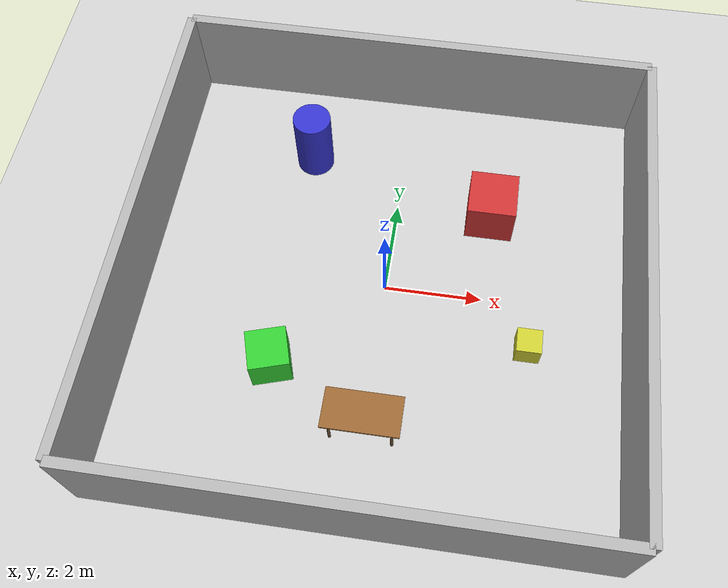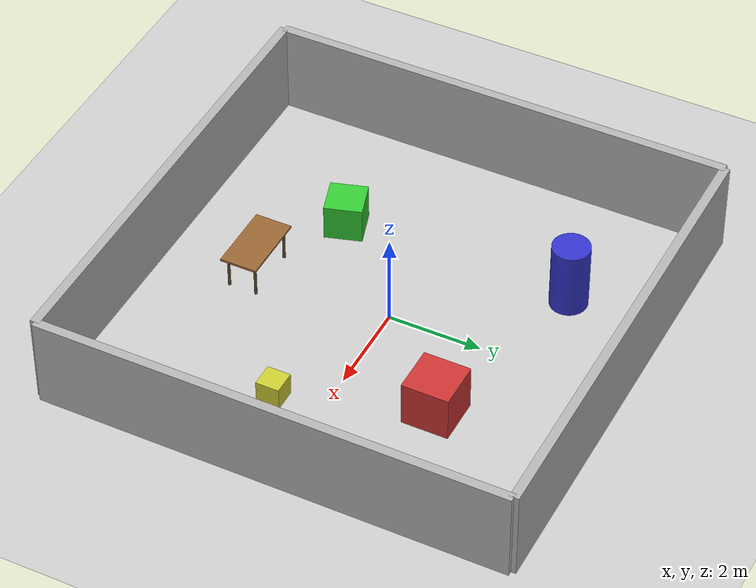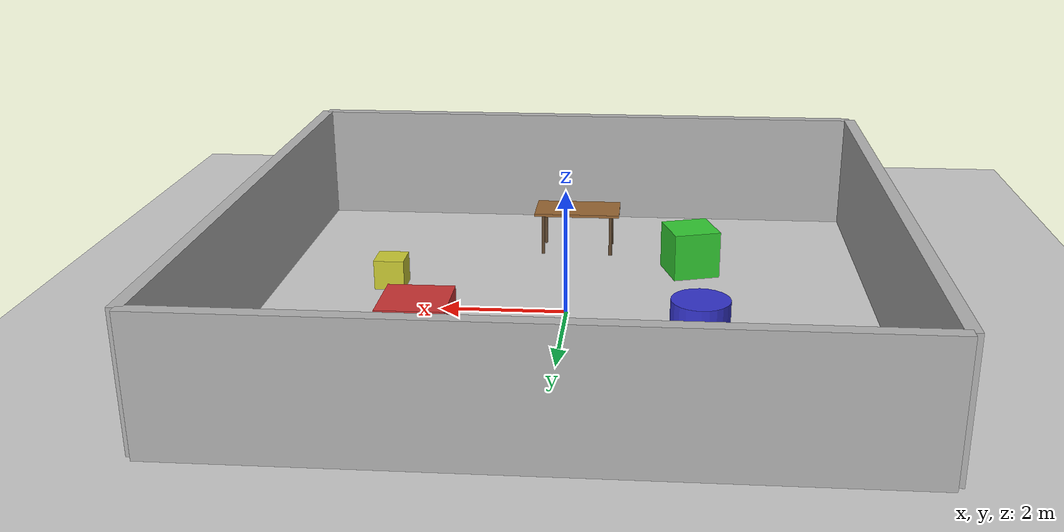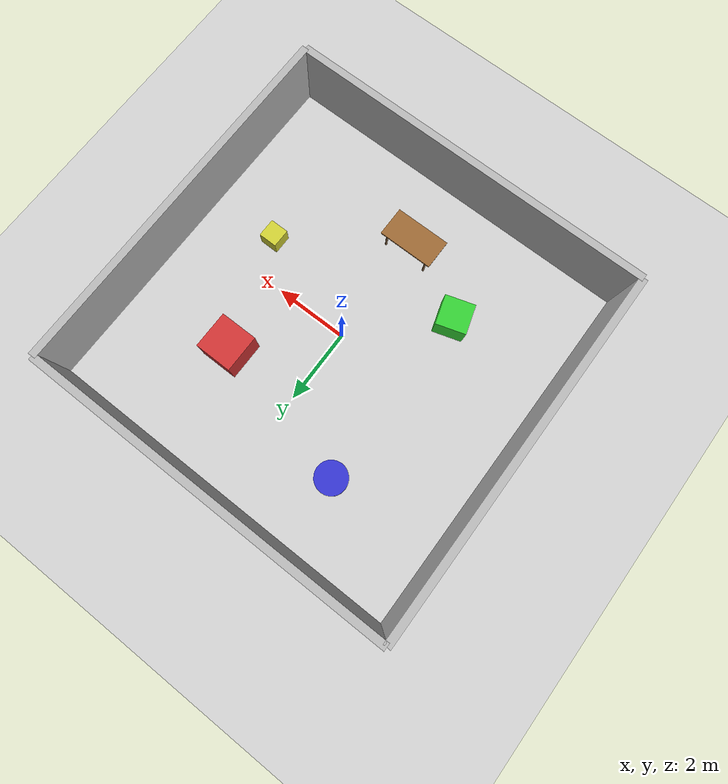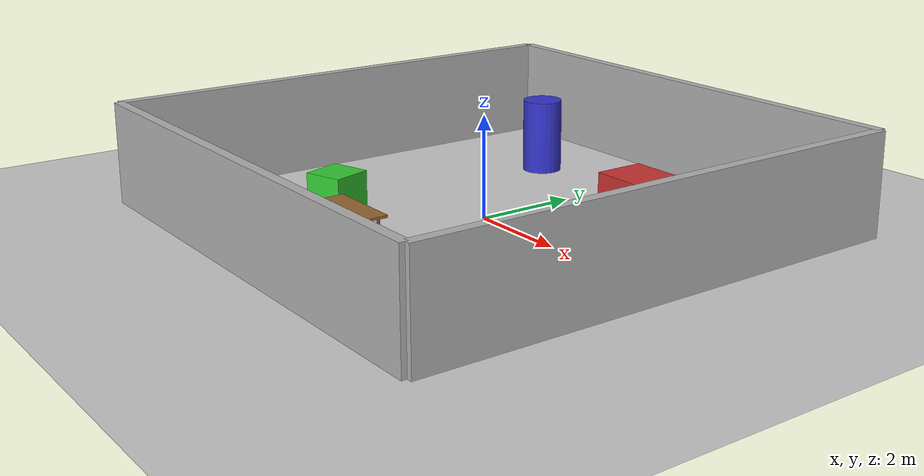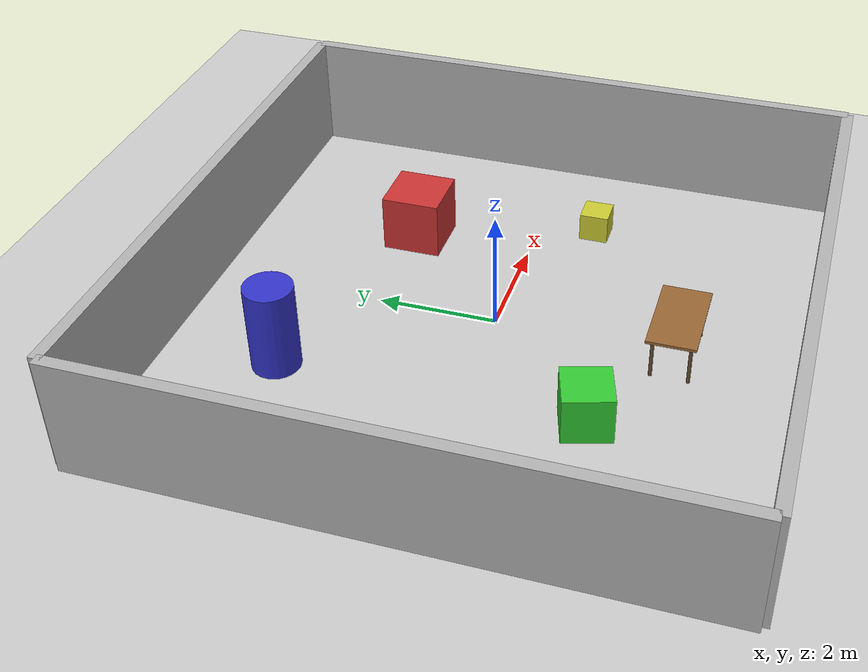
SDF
<?xml version="1.0"?>
<sdf version="1.8">
  <world name="robot_world">

    <!-- Physics configuration -->
    <physics type="ode">
      <max_step_size>0.001</max_step_size>
      <real_time_factor>1</real_time_factor>
      <real_time_update_rate>1000</real_time_update_rate>
    </physics>

    <!-- Plugins -->
    <plugin filename="gz-sim-physics-system" name="gz::sim::systems::Physics"/>
    <plugin filename="gz-sim-user-commands-system" name="gz::sim::systems::UserCommands"/>
    <plugin filename="gz-sim-scene-broadcaster-system" name="gz::sim::systems::SceneBroadcaster"/>
    <plugin filename="gz-sim-sensors-system" name="gz::sim::systems::Sensors">
      <render_engine>ogre2</render_engine>
    </plugin>

    <!-- Lighting -->
    <light type="directional" name="sun">
      <cast_shadows>true</cast_shadows>
      <pose>0 0 10 0 0 0</pose>
      <diffuse>0.8 0.8 0.8 1</diffuse>
      <specular>0.2 0.2 0.2 1</specular>
      <attenuation>
        <range>1000</range>
        <constant>0.9</constant>
        <linear>0.01</linear>
        <quadratic>0.001</quadratic>
      </attenuation>
      <direction>-0.5 0.1 -0.9</direction>
    </light>

    <light type="point" name="ceiling_light_1">
      <pose>2 2 2.5 0 0 0</pose>
      <diffuse>0.5 0.5 0.5 1</diffuse>
      <specular>0.1 0.1 0.1 1</specular>
      <attenuation>
        <range>10</range>
        <constant>0.5</constant>
        <linear>0.1</linear>
        <quadratic>0.01</quadratic>
      </attenuation>
      <cast_shadows>false</cast_shadows>
    </light>

    <!-- Ground Plane -->
    <model name="ground_plane">
      <static>true</static>
      <link name="link">
        <collision name="collision">
          <geometry>
            <plane>
              <normal>0 0 1</normal>
              <size>20 20</size>
            </plane>
          </geometry>
          <surface>
            <friction>
              <ode>
                <mu>1.0</mu>
                <mu2>1.0</mu2>
              </ode>
            </friction>
          </surface>
        </collision>
        <visual name="visual">
          <geometry>
            <plane>
              <normal>0 0 1</normal>
              <size>20 20</size>
            </plane>
          </geometry>
          <material>
            <ambient>0.8 0.8 0.8 1</ambient>
            <diffuse>0.8 0.8 0.8 1</diffuse>
            <specular>0.2 0.2 0.2 1</specular>
          </material>
        </visual>
      </link>
    </model>

    <!-- Room Walls -->
    <!-- North Wall -->
    <model name="wall_north">
      <static>true</static>
      <pose>0 5 1 0 0 0</pose>
      <link name="link">
        <collision name="collision">
          <geometry>
            <box>
              <size>10 0.2 2</size>
            </box>
          </geometry>
        </collision>
        <visual name="visual">
          <geometry>
            <box>
              <size>10 0.2 2</size>
            </box>
          </geometry>
          <material>
            <ambient>0.7 0.7 0.7 1</ambient>
            <diffuse>0.7 0.7 0.7 1</diffuse>
          </material>
        </visual>
      </link>
    </model>

    <!-- South Wall -->
    <model name="wall_south">
      <static>true</static>
      <pose>0 -5 1 0 0 0</pose>
      <link name="link">
        <collision name="collision">
          <geometry>
            <box>
              <size>10 0.2 2</size>
            </box>
          </geometry>
        </collision>
        <visual name="visual">
          <geometry>
            <box>
              <size>10 0.2 2</size>
            </box>
          </geometry>
          <material>
            <ambient>0.7 0.7 0.7 1</ambient>
            <diffuse>0.7 0.7 0.7 1</diffuse>
          </material>
        </visual>
      </link>
    </model>

    <!-- East Wall -->
    <model name="wall_east">
      <static>true</static>
      <pose>5 0 1 0 0 0</pose>
      <link name="link">
        <collision name="collision">
          <geometry>
            <box>
              <size>0.2 10 2</size>
            </box>
          </geometry>
        </collision>
        <visual name="visual">
          <geometry>
            <box>
              <size>0.2 10 2</size>
            </box>
          </geometry>
          <material>
            <ambient>0.7 0.7 0.7 1</ambient>
            <diffuse>0.7 0.7 0.7 1</diffuse>
          </material>
        </visual>
      </link>
    </model>

    <!-- West Wall -->
    <model name="wall_west">
      <static>true</static>
      <pose>-5 0 1 0 0 0</pose>
      <link name="link">
        <collision name="collision">
          <geometry>
            <box>
              <size>0.2 10 2</size>
            </box>
          </geometry>
        </collision>
        <visual name="visual">
          <geometry>
            <box>
              <size>0.2 10 2</size>
            </box>
          </geometry>
          <material>
            <ambient>0.7 0.7 0.7 1</ambient>
            <diffuse>0.7 0.7 0.7 1</diffuse>
          </material>
        </visual>
      </link>
    </model>

    <!-- Obstacles -->
    <!-- Box obstacle 1 -->
    <model name="obstacle_box_1">
      <static>true</static>
      <pose>2 2 0.5 0 0 0</pose>
      <link name="link">
        <collision name="collision">
          <geometry>
            <box>
              <size>1 1 1</size>
            </box>
          </geometry>
        </collision>
        <visual name="visual">
          <geometry>
            <box>
              <size>1 1 1</size>
            </box>
          </geometry>
          <material>
            <ambient>0.8 0.2 0.2 1</ambient>
            <diffuse>0.8 0.2 0.2 1</diffuse>
          </material>
        </visual>
      </link>
    </model>

    <!-- Box obstacle 2 -->
    <model name="obstacle_box_2">
      <static>true</static>
      <pose>-2 -2 0.4 0 0 0.3</pose>
      <link name="link">
        <collision name="collision">
          <geometry>
            <box>
              <size>0.8 0.8 0.8</size>
            </box>
          </geometry>
        </collision>
        <visual name="visual">
          <geometry>
            <box>
              <size>0.8 0.8 0.8</size>
            </box>
          </geometry>
          <material>
            <ambient>0.2 0.8 0.2 1</ambient>
            <diffuse>0.2 0.8 0.2 1</diffuse>
          </material>
        </visual>
      </link>
    </model>

    <!-- Cylinder obstacle -->
    <model name="obstacle_cylinder">
      <static>true</static>
      <pose>-2 3 0.75 0 0 0</pose>
      <link name="link">
        <collision name="collision">
          <geometry>
            <cylinder>
              <radius>0.4</radius>
              <length>1.5</length>
            </cylinder>
          </geometry>
        </collision>
        <visual name="visual">
          <geometry>
            <cylinder>
              <radius>0.4</radius>
              <length>1.5</length>
            </cylinder>
          </geometry>
          <material>
            <ambient>0.2 0.2 0.8 1</ambient>
            <diffuse>0.2 0.2 0.8 1</diffuse>
          </material>
        </visual>
      </link>
    </model>

    <!-- Dynamic obstacle (can be pushed) -->
    <model name="dynamic_box">
      <pose>3 -1 0.25 0 0 0</pose>
      <link name="link">
        <inertial>
          <mass>5.0</mass>
          <inertia>
            <ixx>0.2</ixx>
            <iyy>0.2</iyy>
            <izz>0.2</izz>
          </inertia>
        </inertial>
        <collision name="collision">
          <geometry>
            <box>
              <size>0.5 0.5 0.5</size>
            </box>
          </geometry>
          <surface>
            <friction>
              <ode>
                <mu>0.8</mu>
                <mu2>0.8</mu2>
              </ode>
            </friction>
          </surface>
        </collision>
        <visual name="visual">
          <geometry>
            <box>
              <size>0.5 0.5 0.5</size>
            </box>
          </geometry>
          <material>
            <ambient>0.8 0.8 0.2 1</ambient>
            <diffuse>0.8 0.8 0.2 1</diffuse>
          </material>
        </visual>
      </link>
    </model>

    <!-- Table with objects -->
    <model name="table">
      <static>true</static>
      <pose>0 -3 0 0 0 0</pose>
      <link name="link">
        <!-- Table top -->
        <collision name="top_collision">
          <pose>0 0 0.75 0 0 0</pose>
          <geometry>
            <box>
              <size>1.5 0.8 0.05</size>
            </box>
          </geometry>
        </collision>
        <visual name="top_visual">
          <pose>0 0 0.75 0 0 0</pose>
          <geometry>
            <box>
              <size>1.5 0.8 0.05</size>
            </box>
          </geometry>
          <material>
            <ambient>0.6 0.4 0.2 1</ambient>
            <diffuse>0.6 0.4 0.2 1</diffuse>
          </material>
        </visual>
        <!-- Legs -->
        <visual name="leg1">
          <pose>0.6 0.3 0.375 0 0 0</pose>
          <geometry>
            <cylinder>
              <radius>0.03</radius>
              <length>0.75</length>
            </cylinder>
          </geometry>
          <material>
            <ambient>0.4 0.3 0.2 1</ambient>
            <diffuse>0.4 0.3 0.2 1</diffuse>
          </material>
        </visual>
        <visual name="leg2">
          <pose>-0.6 0.3 0.375 0 0 0</pose>
          <geometry>
            <cylinder>
              <radius>0.03</radius>
              <length>0.75</length>
            </cylinder>
          </geometry>
          <material>
            <ambient>0.4 0.3 0.2 1</ambient>
            <diffuse>0.4 0.3 0.2 1</diffuse>
          </material>
        </visual>
        <visual name="leg3">
          <pose>0.6 -0.3 0.375 0 0 0</pose>
          <geometry>
            <cylinder>
              <radius>0.03</radius>
              <length>0.75</length>
            </cylinder>
          </geometry>
          <material>
            <ambient>0.4 0.3 0.2 1</ambient>
            <diffuse>0.4 0.3 0.2 1</diffuse>
          </material>
        </visual>
        <visual name="leg4">
          <pose>-0.6 -0.3 0.375 0 0 0</pose>
          <geometry>
            <cylinder>
              <radius>0.03</radius>
              <length>0.75</length>
            </cylinder>
          </geometry>
          <material>
            <ambient>0.4 0.3 0.2 1</ambient>
            <diffuse>0.4 0.3 0.2 1</diffuse>
          </material>
        </visual>
      </link>
    </model>

  </world>
</sdf>
